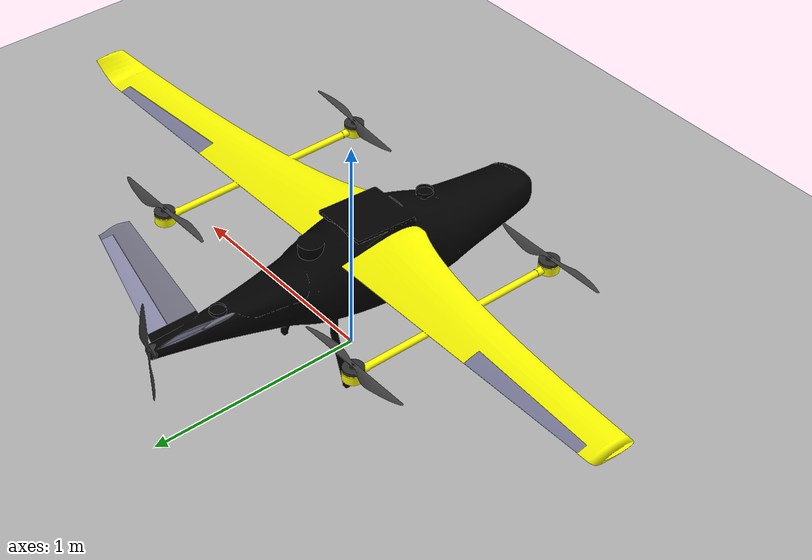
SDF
<sdf version="1.9">
 <world name="vtol_world">
  <model name="ground_plane">
   <static>true</static>
   <link name="link">
    <collision name="collision">
     <geometry><plane><normal>0 0 1</normal><size>200 200</size></plane></geometry>
    </collision>
    <visual name="visual">
     <geometry><plane><normal>0 0 1</normal><size>200 200</size></plane></geometry>
     <material>
      <ambient>0.7 0.7 0.7 1</ambient>
      <diffuse>0.7 0.7 0.7 1</diffuse>
      <specular>0.4 0.4 0.4 1</specular>
     </material>
    </visual>
   </link>
  </model>
  <include><uri>model://vtol</uri><name>vtol</name><pose>0 0 0.333 1.5708 0 0</pose></include>
 </world>
</sdf>
